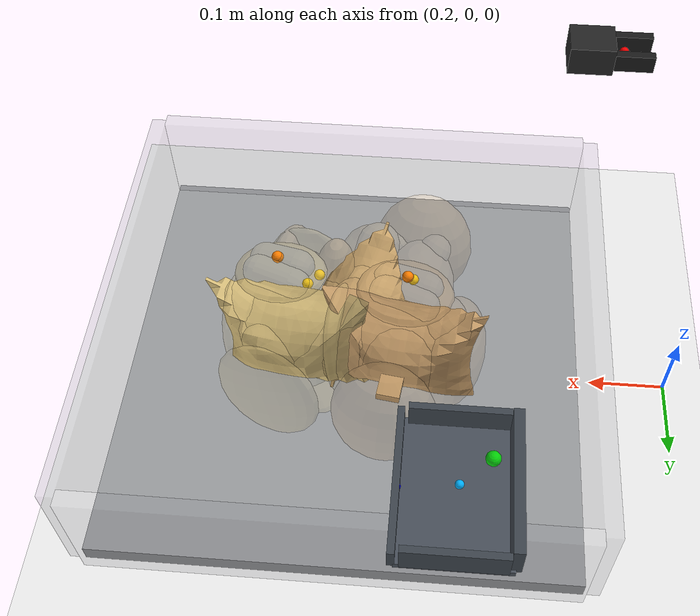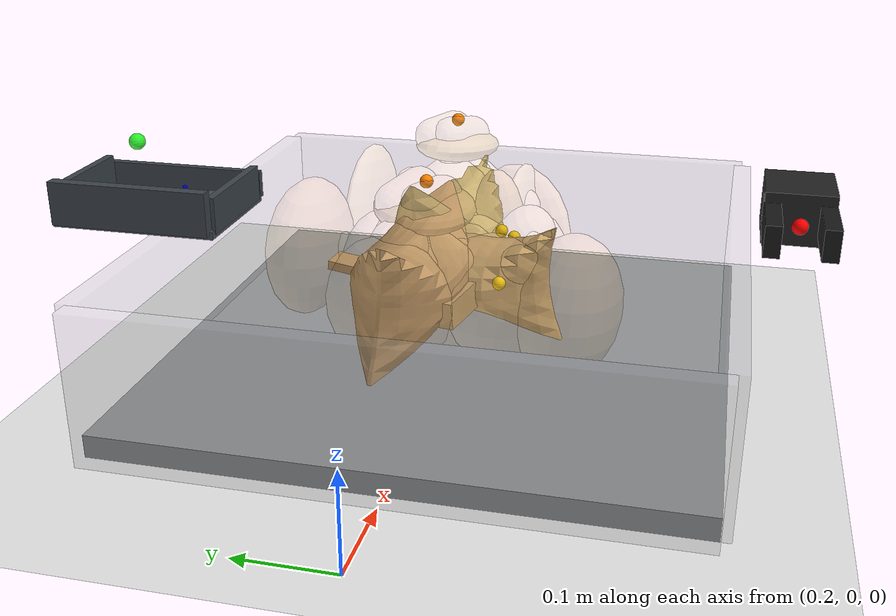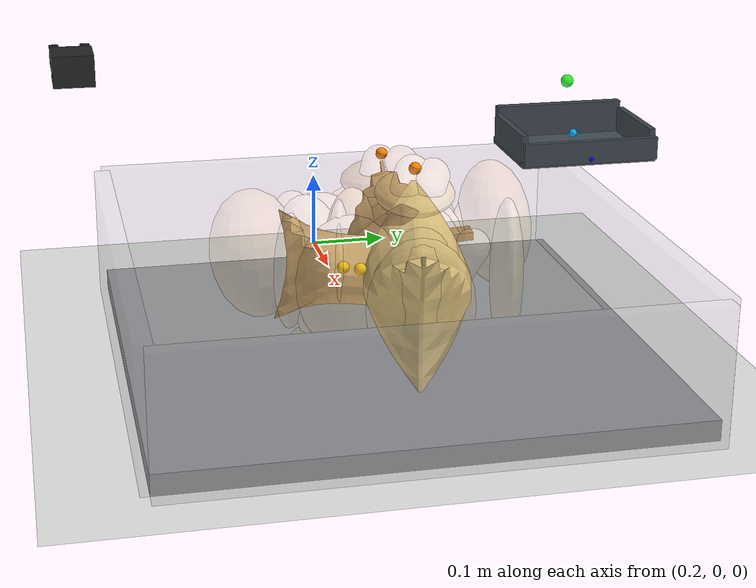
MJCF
<mujoco model="top_fold_occluded_seed10">
  <compiler angle="radian" coordinate="local" inertiafromgeom="true" meshdir="D:/Michael/2025/01.Research/01.Parceldetection/16.Pybullet/bullet3-master (1)/bullet3-master/examples/pybullet/examples/DeformableTest/Sackcodex2/object"/>
  <option timestep="0.002" gravity="0 0 -9.81" integrator="implicitfast" iterations="100" tolerance="1e-8"/>
  <size memory="768M" nconmax="12000"/>

  <visual>
    <global azimuth="128" elevation="-20" offwidth="1280" offheight="720"/>
    <headlight ambient="0.34 0.34 0.34" diffuse="0.78 0.78 0.78" specular="0.15 0.15 0.15"/>
    <rgba haze="0.11 0.13 0.18 1"/>
  </visual>

  <default>
    <geom condim="4" friction="1.15 0.03 0.01" margin="0.003" solimp="0.93 0.98 0.003" solref="0.012 1"/>
    <joint damping="1.2" armature="0.002"/>
    <position kp="2500" forcelimited="true" forcerange="-420 420"/>
    <motor ctrllimited="true"/>
  </default>

  <asset>
    <mesh name="sack_0_visual_mesh" file="sack10.obj" scale="0.0687 0.0687 0.0685"/>
    <mesh name="sack_1_visual_mesh" file="sack7.obj" scale="0.0771 0.0771 0.0850"/>
    <mesh name="sack_2_visual_mesh" file="sack9.obj" scale="0.0751 0.0751 0.0799"/>
  </asset>

  <worldbody>
    <light name="key" pos="0.85 0.15 1.8" dir="-0.2 -0.1 -1" directional="true"/>
    <geom name="floor" type="plane" size="2 2 0.1" rgba="0.93 0.93 0.93 1"/>
    <geom name="work_pad" type="box" pos="0.62 0 0.012" size="0.30 0.30 0.012" rgba="0.60 0.61 0.62 1" friction="1.4 0.05 0.01"/>
    <geom name="corral_front" type="box" pos="0.93 0.00 0.08" size="0.010 0.30 0.08" rgba="0.55 0.55 0.58 0.22" friction="1.0 0.03 0.01"/>
    <geom name="corral_back" type="box" pos="0.31 0.00 0.08" size="0.010 0.30 0.08" rgba="0.55 0.55 0.58 0.18" friction="1.0 0.03 0.01"/>
    <geom name="corral_left" type="box" pos="0.62 0.30 0.08" size="0.30 0.010 0.08" rgba="0.55 0.55 0.58 0.14" friction="1.0 0.03 0.01"/>
    <geom name="corral_right" type="box" pos="0.62 -0.30 0.08" size="0.30 0.010 0.08" rgba="0.55 0.55 0.58 0.14" friction="1.0 0.03 0.01"/>
    <camera name="overview" pos="1.22 0.00 0.92" xyaxes="0 1 0 -0.46 0 0.88"/>

    <body name="gripper_mocap" mocap="true" pos="0.36 -0.33 0.30" quat="0.707107 0 -0.707107 0"/>
    <body name="scoop_mocap" mocap="true" pos="0.42 0.28 0.20" quat="1 0 0 0"/>

    <body name="gripper_ctrl_base" pos="0.36 -0.33 0.30">
      <inertial pos="0 0 0" mass="0.001" diaginertia="1e-6 1e-6 1e-6"/>
      <joint name="gripper_ctrl_x" type="slide" axis="1 0 0" limited="true" range="0.20 1.00"/>
      <body name="gripper_ctrl_y_body">
        <inertial pos="0 0 0" mass="0.001" diaginertia="1e-6 1e-6 1e-6"/>
        <joint name="gripper_ctrl_y" type="slide" axis="0 1 0" limited="true" range="-0.60 0.60"/>
        <body name="gripper_ctrl_z_body">
          <inertial pos="0 0 0" mass="0.001" diaginertia="1e-6 1e-6 1e-6"/>
          <joint name="gripper_ctrl_z" type="slide" axis="0 0 1" limited="true" range="0.04 0.70"/>
          <body name="gripper_ctrl_yaw_body">
            <inertial pos="0 0 0" mass="0.001" diaginertia="1e-6 1e-6 1e-6"/>
            <joint name="gripper_ctrl_yaw" type="hinge" axis="0 0 1" limited="true" range="-3.1416 3.1416"/>
            <body name="gripper_ctrl_pitch_body">
              <inertial pos="0 0 0" mass="0.001" diaginertia="1e-6 1e-6 1e-6"/>
              <joint name="gripper_ctrl_pitch" type="hinge" axis="0 1 0" limited="true" range="-3.1416 3.1416"/>
              <body name="gripper_ctrl_roll_body">
                <inertial pos="0 0 0" mass="0.001" diaginertia="1e-6 1e-6 1e-6"/>
                <joint name="gripper_ctrl_roll" type="hinge" axis="1 0 0" limited="true" range="-3.1416 3.1416"/>
              </body>
            </body>
          </body>
        </body>
      </body>
    </body>

    <body name="scoop_ctrl_base" pos="0.42 0.28 0.20">
      <inertial pos="0 0 0" mass="0.001" diaginertia="1e-6 1e-6 1e-6"/>
      <joint name="scoop_ctrl_x" type="slide" axis="1 0 0" limited="true" range="0.20 1.00"/>
      <body name="scoop_ctrl_y_body">
        <inertial pos="0 0 0" mass="0.001" diaginertia="1e-6 1e-6 1e-6"/>
        <joint name="scoop_ctrl_y" type="slide" axis="0 1 0" limited="true" range="-0.60 0.60"/>
        <body name="scoop_ctrl_z_body">
          <inertial pos="0 0 0" mass="0.001" diaginertia="1e-6 1e-6 1e-6"/>
          <joint name="scoop_ctrl_z" type="slide" axis="0 0 1" limited="true" range="0.04 0.70"/>
          <body name="scoop_ctrl_yaw_body">
            <inertial pos="0 0 0" mass="0.001" diaginertia="1e-6 1e-6 1e-6"/>
            <joint name="scoop_ctrl_yaw" type="hinge" axis="0 0 1" limited="true" range="-3.1416 3.1416"/>
            <body name="scoop_ctrl_pitch_body">
              <inertial pos="0 0 0" mass="0.001" diaginertia="1e-6 1e-6 1e-6"/>
              <joint name="scoop_ctrl_pitch" type="hinge" axis="0 1 0" limited="true" range="-3.1416 3.1416"/>
              <body name="scoop_ctrl_roll_body">
                <inertial pos="0 0 0" mass="0.001" diaginertia="1e-6 1e-6 1e-6"/>
                <joint name="scoop_ctrl_roll" type="hinge" axis="1 0 0" limited="true" range="-3.1416 3.1416"/>
              </body>
            </body>
          </body>
        </body>
      </body>
    </body>

    <body name="gripper_tool" pos="0.36 -0.33 0.30" quat="0.707107 0 -0.707107 0">
      <freejoint name="gripper_tool_free"/>
      <inertial pos="0 0 0.04" mass="0.08" diaginertia="0.0002 0.0002 0.0002"/>
      <geom name="gripper_palm" type="box" pos="0 0 0.030" size="0.020 0.026 0.030" rgba="0.14 0.14 0.14 1"/>
      <body name="left_finger_body" pos="0 0 0.072">
        <joint name="left_finger_slide" type="slide" axis="0 1 0" limited="true" range="0.010 0.040" damping="12"/>
        <geom name="left_finger_geom" type="box" pos="0 0.020 0" size="0.012 0.006 0.040" rgba="0.10 0.10 0.10 1" friction="2.2 0.05 0.01"/>
      </body>
      <body name="right_finger_body" pos="0 0 0.072">
        <joint name="right_finger_slide" type="slide" axis="0 -1 0" limited="true" range="0.010 0.040" damping="12"/>
        <geom name="right_finger_geom" type="box" pos="0 -0.020 0" size="0.012 0.006 0.040" rgba="0.10 0.10 0.10 1" friction="2.2 0.05 0.01"/>
      </body>
      <site name="gripper_pinch_site" pos="0 0 0.074" size="0.006" rgba="1 0 0 1"/>
    </body>

    <body name="scoop_tool" pos="0.42 0.28 0.20" quat="1 0 0 0">
      <freejoint name="scoop_tool_free"/>
      <inertial pos="0 0 0.02" mass="0.10" diaginertia="0.0003 0.0003 0.0003"/>
      <geom name="scoop_plate" type="box" pos="0.062 0 0" size="0.062 0.085 0.004" rgba="0.28 0.31 0.35 1" friction="1.7 0.05 0.01"/>
      <geom name="scoop_lip" type="box" pos="0.126 0 0.014" size="0.004 0.085 0.014" rgba="0.24 0.27 0.30 1" friction="1.7 0.05 0.01"/>
      <geom name="scoop_left_rail" type="box" pos="0.062 0.082 0.018" size="0.056 0.004 0.018" rgba="0.24 0.27 0.30 1"/>
      <geom name="scoop_right_rail" type="box" pos="0.062 -0.082 0.018" size="0.056 0.004 0.018" rgba="0.24 0.27 0.30 1"/>
      <geom name="scoop_backstop" type="box" pos="0.000 0 0.022" size="0.006 0.082 0.022" rgba="0.24 0.27 0.30 1"/>
      <site name="scoop_tip_site" pos="0.126 0 0.005" size="0.005" rgba="0 0 1 1"/>
      <site name="scoop_center_site" pos="0.060 0 0.020" size="0.005" rgba="0 0.7 1 1"/>
      <site name="score_overlay_site" pos="0.030 0 0.080" size="0.008" rgba="0 1 0 0.8"/>
    </body>

    <body name="sack_0" pos="0.6150 -0.0272 0.1082" euler="-0.0689 -0.0793 -1.8466">
      <freejoint name="sack_0_free"/>

      <geom name="sack_0_visual" type="mesh" mesh="sack_0_visual_mesh" rgba="0.820 0.670 0.440 0.92" contype="0" conaffinity="0"/>
      <site name="sack_0_center_site" pos="0 0 0.000" size="0.006" rgba="0 1 0 1"/>
      <site name="sack_0_top_site" pos="0.0049 0.0057 -0.0005" size="0.007" rgba="1 0.5 0 1"/>
      <site name="sack_0_side_site" pos="0.0122 0.0613 0.018" size="0.007" rgba="1 0.8 0 1"/>

      <geom name="sack_0_core_geom" type="ellipsoid" pos="0 0 0.0054" size="0.0443 0.0348 0.0616" mass="0.6942" rgba="0.820 0.670 0.440 0.12" friction="1.0 0.03 0.01"/>
      <geom name="sack_0_core_front" type="capsule" fromto="-0.0118 0 -0.0180 0.0622 0 0.0580" size="0.0276" mass="0.1653" rgba="0.820 0.670 0.440 0.10"/>
      <geom name="sack_0_core_left" type="capsule" fromto="-0.016 0.0408 -0.012 0.020 0.0702 0.054" size="0.0203" mass="0.2975" rgba="0.820 0.670 0.440 0.10"/>
      <geom name="sack_0_core_right" type="capsule" fromto="-0.016 -0.0408 -0.012 0.020 -0.0702 0.054" size="0.0182" mass="0.2975" rgba="0.820 0.670 0.440 0.10"/>

      <!-- 자루의 외형은 둥근 shell lobe로 보이게 하고, contact proxy는 반투명하게 숨긴다. -->
      <geom name="sack_0_shell_main_visual" type="ellipsoid" pos="0.0061 -0.0006 -0.0318" size="0.0674 0.0538 0.0866" rgba="0.820 0.670 0.440 0.16" contype="0" conaffinity="0"/>
      <geom name="sack_0_shell_left_visual" type="ellipsoid" pos="0.0040 0.0390 0.0020" size="0.0458 0.0299 0.0710" rgba="0.820 0.670 0.440 0.14" contype="0" conaffinity="0"/>
      <geom name="sack_0_shell_right_visual" type="ellipsoid" pos="0.0040 -0.0240 0.0000" size="0.0431 0.0203 0.0693" rgba="0.820 0.670 0.440 0.12" contype="0" conaffinity="0"/>
      <geom name="sack_0_top_left_crown_visual" type="capsule" fromto="-0.0210 0.0121 -0.0430 0.0210 0.0061 -0.0390" size="0.0204" rgba="0.820 0.670 0.440 0.14" contype="0" conaffinity="0"/>
      <geom name="sack_0_top_right_crown_visual" type="capsule" fromto="-0.0210 -0.0061 -0.0390 0.0210 -0.0121 -0.0430" size="0.0204" rgba="0.820 0.670 0.440 0.14" contype="0" conaffinity="0"/>

      <body name="sack_0_bottom_support_proxy_body" pos="0.0022 0.0057 -0.0855">
        <joint name="sack_0_bottom_x" type="slide" axis="1 0 0" limited="true" range="-0.012 0.012" damping="18" stiffness="417.7"/>
        <joint name="sack_0_bottom_y" type="slide" axis="0 1 0" limited="true" range="-0.012 0.012" damping="18" stiffness="417.7"/>
        <joint name="sack_0_bottom_z" type="slide" axis="0 0 1" limited="true" range="-0.008 0.020" damping="24" stiffness="514.9"/>
        <geom name="sack_0_bottom_support_proxy" type="ellipsoid" size="0.0686 0.0537 0.0154" mass="0.1322" rgba="0.820 0.670 0.440 0.10" friction="1.55 0.05 0.01"/>
        <geom name="sack_0_bottom_deform_visual" type="ellipsoid" size="0.0731 0.0597 0.0200" rgba="0.820 0.670 0.440 0.22" contype="0" conaffinity="0"/>
      </body>

      <body name="sack_0_top_grasp_proxy_body" pos="0.0122 0.0056 -0.0285">
        <joint name="sack_0_top_x" type="slide" axis="1 0 0" limited="true" range="-0.018 0.018" damping="12" stiffness="160.2"/>
        <joint name="sack_0_top_y" type="slide" axis="0 1 0" limited="true" range="-0.018 0.018" damping="12" stiffness="160.2"/>
        <joint name="sack_0_top_z" type="slide" axis="0 0 1" limited="true" range="-0.040 0.010" damping="14" stiffness="115.9"/>
        <geom name="sack_0_top_grasp_proxy" type="ellipsoid" size="0.0526 0.0337 0.0337" mass="0.0992" rgba="0.820 0.670 0.440 0.10" friction="2.2 0.05 0.01"/>
        <geom name="sack_0_top_deform_visual" type="ellipsoid" size="0.0547 0.0364 0.0425" rgba="0.820 0.670 0.440 0.36" contype="0" conaffinity="0"/>
        <geom name="sack_0_top_fold_left_visual" type="capsule" fromto="-0.0252 0.0094 0.000 0.0053 0.0027 0.0245" size="0.0147" rgba="0.820 0.670 0.440 0.26" contype="0" conaffinity="0"/>
        <geom name="sack_0_top_fold_right_visual" type="capsule" fromto="-0.0063 -0.0027 0.0245 0.0252 -0.0094 0.000" size="0.0147" rgba="0.820 0.670 0.440 0.26" contype="0" conaffinity="0"/>
      </body>

      <body name="sack_0_left_side_proxy_body" pos="0.0020 0.1027 0.010">
        <joint name="sack_0_left_side_slide" type="slide" axis="0 -1 0" limited="true" range="-0.028 0.016" damping="16" stiffness="199.7"/>
        <geom name="sack_0_left_side_proxy" type="ellipsoid" size="0.0586 0.0233 0.0775" mass="0.0992" rgba="0.820 0.670 0.440 0.08" friction="1.25 0.04 0.01"/>
        <geom name="sack_0_left_side_deform_visual" type="ellipsoid" size="0.0603 0.0252 0.0790" rgba="0.820 0.670 0.440 0.24" contype="0" conaffinity="0"/>
      </body>

      <body name="sack_0_right_side_proxy_body" pos="0.0020 -0.0877 0.010">
        <joint name="sack_0_right_side_slide" type="slide" axis="0 1 0" limited="true" range="-0.028 0.016" damping="16" stiffness="185.4"/>
        <geom name="sack_0_right_side_proxy" type="ellipsoid" size="0.0562 0.0182 0.0759" mass="0.0992" rgba="0.820 0.670 0.440 0.08" friction="1.25 0.04 0.01"/>
        <geom name="sack_0_right_side_deform_visual" type="ellipsoid" size="0.0580 0.0201 0.0775" rgba="0.820 0.670 0.440 0.24" contype="0" conaffinity="0"/>
      </body>

      <body name="sack_0_front_proxy_body" pos="0.0748 -0.0002 0.000">
        <joint name="sack_0_front_slide" type="slide" axis="-1 0 0" limited="true" range="-0.022 0.012" damping="15" stiffness="198.8"/>
        <geom name="sack_0_front_support_proxy" type="ellipsoid" size="0.0216 0.0517 0.0735" mass="0.0826" rgba="0.820 0.670 0.440 0.08" friction="1.20 0.04 0.01"/>
        <geom name="sack_0_front_deform_visual" type="ellipsoid" size="0.0220 0.0528 0.0749" rgba="0.820 0.670 0.440 0.20" contype="0" conaffinity="0"/>
      </body>

      <body name="sack_0_back_proxy_body" pos="-0.0577 -0.0002 0.000">
        <joint name="sack_0_back_slide" type="slide" axis="1 0 0" limited="true" range="-0.022 0.012" damping="15" stiffness="184.5"/>
        <geom name="sack_0_back_support_proxy" type="ellipsoid" size="0.0198 0.0517 0.0735" mass="0.0826" rgba="0.820 0.670 0.440 0.08" friction="1.20 0.04 0.01"/>
        <geom name="sack_0_back_deform_visual" type="ellipsoid" size="0.0207 0.0528 0.0749" rgba="0.820 0.670 0.440 0.20" contype="0" conaffinity="0"/>
      </body>

      <body name="sack_0_shape_proxy_body" pos="0.0073 0.0388 0.0476">
        <joint name="sack_0_bulge_y" type="slide" axis="0 1 0" limited="true" range="-0.020 0.020" damping="8" stiffness="128.2"/>
        <joint name="sack_0_bulge_z" type="slide" axis="0 0 1" limited="true" range="-0.014 0.028" damping="8" stiffness="121.2"/>
        <geom name="sack_0_shape_proxy" type="ellipsoid" size="0.0243 0.0206 0.0497" mass="0.0661" rgba="0.820 0.670 0.440 0.10"/>
        <geom name="sack_0_shape_deform_visual" type="ellipsoid" size="0.0284 0.0247 0.0585" rgba="0.820 0.670 0.440 0.32" contype="0" conaffinity="0"/>
      </body>
    </body>

    <body name="sack_1" pos="0.6908 0.0268 0.1158" euler="0.0131 0.0979 -0.1887">
      <freejoint name="sack_1_free"/>

      <geom name="sack_1_visual" type="mesh" mesh="sack_1_visual_mesh" rgba="0.840 0.740 0.480 0.92" contype="0" conaffinity="0"/>
      <site name="sack_1_center_site" pos="0 0 0.000" size="0.006" rgba="0 1 0 1"/>
      <site name="sack_1_top_site" pos="0.0009 -0.0059 0.1390" size="0.007" rgba="1 0.5 0 1"/>
      <site name="sack_1_side_site" pos="0.0022 -0.0645 0.018" size="0.007" rgba="1 0.8 0 1"/>

      <geom name="sack_1_core_geom" type="ellipsoid" pos="0 0 0.0060" size="0.0521 0.0444 0.0905" mass="1.1129" rgba="0.840 0.740 0.480 0.12" friction="1.0 0.03 0.01"/>
      <geom name="sack_1_core_front" type="capsule" fromto="-0.0218 0 -0.0180 0.0522 0 0.0580" size="0.0311" mass="0.2650" rgba="0.840 0.740 0.480 0.10"/>
      <geom name="sack_1_core_left" type="capsule" fromto="-0.016 0.0356 -0.012 0.020 0.0582 0.054" size="0.0201" mass="0.4770" rgba="0.840 0.740 0.480 0.10"/>
      <geom name="sack_1_core_right" type="capsule" fromto="-0.016 -0.0356 -0.012 0.020 -0.0582 0.054" size="0.0181" mass="0.4770" rgba="0.840 0.740 0.480 0.10"/>

      <!-- 자루의 외형은 둥근 shell lobe로 보이게 하고, contact proxy는 반투명하게 숨긴다. -->
      <geom name="sack_1_shell_main_visual" type="ellipsoid" pos="0.0011 0.0001 0.0004" size="0.0691 0.0596 0.0952" rgba="0.840 0.740 0.480 0.16" contype="0" conaffinity="0"/>
      <geom name="sack_1_shell_left_visual" type="ellipsoid" pos="0.0040 0.0284 0.0020" size="0.0470 0.0216 0.0781" rgba="0.840 0.740 0.480 0.14" contype="0" conaffinity="0"/>
      <geom name="sack_1_shell_right_visual" type="ellipsoid" pos="0.0040 -0.0174 0.0000" size="0.0442 0.0166 0.0762" rgba="0.840 0.740 0.480 0.12" contype="0" conaffinity="0"/>
      <geom name="sack_1_top_left_crown_visual" type="capsule" fromto="-0.0220 0.0149 0.1217 0.0220 0.0075 0.1257" size="0.0196" rgba="0.840 0.740 0.480 0.14" contype="0" conaffinity="0"/>
      <geom name="sack_1_top_right_crown_visual" type="capsule" fromto="-0.0220 -0.0075 0.1257 0.0220 -0.0149 0.1217" size="0.0196" rgba="0.840 0.740 0.480 0.14" contype="0" conaffinity="0"/>

      <body name="sack_1_bottom_support_proxy_body" pos="0.0004 -0.0013 -0.0964">
        <joint name="sack_1_bottom_x" type="slide" axis="1 0 0" limited="true" range="-0.012 0.012" damping="18" stiffness="523.2"/>
        <joint name="sack_1_bottom_y" type="slide" axis="0 1 0" limited="true" range="-0.012 0.012" damping="18" stiffness="523.2"/>
        <joint name="sack_1_bottom_z" type="slide" axis="0 0 1" limited="true" range="-0.008 0.020" damping="24" stiffness="643.9"/>
        <geom name="sack_1_bottom_support_proxy" type="ellipsoid" size="0.0709 0.0614 0.0119" mass="0.2120" rgba="0.840 0.740 0.480 0.10" friction="1.55 0.05 0.01"/>
        <geom name="sack_1_bottom_deform_visual" type="ellipsoid" size="0.0755 0.0674 0.0155" rgba="0.840 0.740 0.480 0.22" contype="0" conaffinity="0"/>
      </body>

      <body name="sack_1_top_grasp_proxy_body" pos="0.0022 -0.0059 0.1110">
        <joint name="sack_1_top_x" type="slide" axis="1 0 0" limited="true" range="-0.018 0.018" damping="12" stiffness="201.2"/>
        <joint name="sack_1_top_y" type="slide" axis="0 1 0" limited="true" range="-0.018 0.018" damping="12" stiffness="201.2"/>
        <joint name="sack_1_top_z" type="slide" axis="0 0 1" limited="true" range="-0.040 0.010" damping="14" stiffness="151.1"/>
        <geom name="sack_1_top_grasp_proxy" type="ellipsoid" size="0.0551 0.0414 0.0130" mass="0.1590" rgba="0.840 0.740 0.480 0.10" friction="2.2 0.05 0.01"/>
        <geom name="sack_1_top_deform_visual" type="ellipsoid" size="0.0573 0.0447 0.0172" rgba="0.840 0.740 0.480 0.36" contype="0" conaffinity="0"/>
        <geom name="sack_1_top_fold_left_visual" type="capsule" fromto="-0.0264 0.0116 0.000 0.0055 0.0033 0.0107" size="0.0141" rgba="0.840 0.740 0.480 0.26" contype="0" conaffinity="0"/>
        <geom name="sack_1_top_fold_right_visual" type="capsule" fromto="-0.0066 -0.0033 0.0107 0.0264 -0.0116 0.000" size="0.0141" rgba="0.840 0.740 0.480 0.26" contype="0" conaffinity="0"/>
      </body>

      <body name="sack_1_left_side_proxy_body" pos="0.0004 0.0998 0.010">
        <joint name="sack_1_left_side_slide" type="slide" axis="0 -1 0" limited="true" range="-0.028 0.016" damping="16" stiffness="272.0"/>
        <geom name="sack_1_left_side_proxy" type="ellipsoid" size="0.0611 0.0166 0.0884" mass="0.1590" rgba="0.840 0.740 0.480 0.08" friction="1.25 0.04 0.01"/>
        <geom name="sack_1_left_side_deform_visual" type="ellipsoid" size="0.0629 0.0179 0.0902" rgba="0.840 0.740 0.480 0.24" contype="0" conaffinity="0"/>
      </body>

      <body name="sack_1_right_side_proxy_body" pos="0.0004 -0.0888 0.010">
        <joint name="sack_1_right_side_slide" type="slide" axis="0 1 0" limited="true" range="-0.028 0.016" damping="16" stiffness="251.8"/>
        <geom name="sack_1_right_side_proxy" type="ellipsoid" size="0.0586 0.0129 0.0866" mass="0.1590" rgba="0.840 0.740 0.480 0.08" friction="1.25 0.04 0.01"/>
        <geom name="sack_1_right_side_deform_visual" type="ellipsoid" size="0.0605 0.0143 0.0884" rgba="0.840 0.740 0.480 0.24" contype="0" conaffinity="0"/>
      </body>

      <body name="sack_1_front_proxy_body" pos="0.0673 0.0000 0.000">
        <joint name="sack_1_front_slide" type="slide" axis="-1 0 0" limited="true" range="-0.022 0.012" damping="15" stiffness="251.6"/>
        <geom name="sack_1_front_support_proxy" type="ellipsoid" size="0.0171 0.0594 0.0844" mass="0.1325" rgba="0.840 0.740 0.480 0.08" friction="1.20 0.04 0.01"/>
        <geom name="sack_1_front_deform_visual" type="ellipsoid" size="0.0174 0.0606 0.0861" rgba="0.840 0.740 0.480 0.20" contype="0" conaffinity="0"/>
      </body>

      <body name="sack_1_back_proxy_body" pos="-0.0642 0.0000 0.000">
        <joint name="sack_1_back_slide" type="slide" axis="1 0 0" limited="true" range="-0.022 0.012" damping="15" stiffness="231.4"/>
        <geom name="sack_1_back_support_proxy" type="ellipsoid" size="0.0157 0.0594 0.0844" mass="0.1325" rgba="0.840 0.740 0.480 0.08" friction="1.20 0.04 0.01"/>
        <geom name="sack_1_back_deform_visual" type="ellipsoid" size="0.0164 0.0606 0.0861" rgba="0.840 0.740 0.480 0.20" contype="0" conaffinity="0"/>
      </body>

      <body name="sack_1_shape_proxy_body" pos="0.0013 -0.0241 0.0171">
        <joint name="sack_1_bulge_y" type="slide" axis="0 1 0" limited="true" range="-0.020 0.020" damping="8" stiffness="60.0"/>
        <joint name="sack_1_bulge_z" type="slide" axis="0 0 1" limited="true" range="-0.014 0.028" damping="8" stiffness="70.0"/>
        <geom name="sack_1_shape_proxy" type="ellipsoid" size="0.0241 0.0202 0.0290" mass="0.1060" rgba="0.840 0.740 0.480 0.10"/>
        <geom name="sack_1_shape_deform_visual" type="ellipsoid" size="0.0282 0.0243 0.0332" rgba="0.840 0.740 0.480 0.32" contype="0" conaffinity="0"/>
      </body>
    </body>

    <body name="sack_2" pos="0.5562 0.0344 0.1177" euler="0.0979 -0.0501 3.0281">
      <freejoint name="sack_2_free"/>

      <geom name="sack_2_visual" type="mesh" mesh="sack_2_visual_mesh" rgba="0.760 0.600 0.400 0.92" contype="0" conaffinity="0"/>
      <site name="sack_2_center_site" pos="0 0 0.000" size="0.006" rgba="0 1 0 1"/>
      <site name="sack_2_top_site" pos="-0.0006 0.0067 0.1122" size="0.007" rgba="1 0.5 0 1"/>
      <site name="sack_2_side_site" pos="-0.0015 0.0943 0.018" size="0.007" rgba="1 0.8 0 1"/>

      <geom name="sack_2_core_geom" type="ellipsoid" pos="0 0 0.0059" size="0.0440 0.0353 0.0764" mass="0.7669" rgba="0.760 0.600 0.400 0.12" friction="1.0 0.03 0.01"/>
      <geom name="sack_2_core_front" type="capsule" fromto="-0.0255 0 -0.0180 0.0485 0 0.0580" size="0.0298" mass="0.1826" rgba="0.760 0.600 0.400 0.10"/>
      <geom name="sack_2_core_left" type="capsule" fromto="-0.016 0.0622 -0.012 0.020 0.1191 0.054" size="0.0209" mass="0.3287" rgba="0.760 0.600 0.400 0.10"/>
      <geom name="sack_2_core_right" type="capsule" fromto="-0.016 -0.0622 -0.012 0.020 -0.1191 0.054" size="0.0187" mass="0.3287" rgba="0.760 0.600 0.400 0.10"/>

      <!-- 자루의 외형은 둥근 shell lobe로 보이게 하고, contact proxy는 반투명하게 숨긴다. -->
      <geom name="sack_2_shell_main_visual" type="ellipsoid" pos="-0.0007 0.0012 -0.0031" size="0.0724 0.0666 0.0861" rgba="0.760 0.600 0.400 0.16" contype="0" conaffinity="0"/>
      <geom name="sack_2_shell_left_visual" type="ellipsoid" pos="0.0040 0.0916 0.0020" size="0.0493 0.0635 0.0706" rgba="0.760 0.600 0.400 0.14" contype="0" conaffinity="0"/>
      <geom name="sack_2_shell_right_visual" type="ellipsoid" pos="0.0040 -0.0417 0.0000" size="0.0464 0.0356 0.0688" rgba="0.760 0.600 0.400 0.12" contype="0" conaffinity="0"/>
      <geom name="sack_2_top_left_crown_visual" type="capsule" fromto="-0.0231 0.0174 0.0923 0.0231 0.0087 0.0963" size="0.0207" rgba="0.760 0.600 0.400 0.14" contype="0" conaffinity="0"/>
      <geom name="sack_2_top_right_crown_visual" type="capsule" fromto="-0.0231 -0.0087 0.0963 0.0231 -0.0174 0.0923" size="0.0207" rgba="0.760 0.600 0.400 0.14" contype="0" conaffinity="0"/>

      <body name="sack_2_bottom_support_proxy_body" pos="-0.0003 0.0033 -0.0845">
        <joint name="sack_2_bottom_x" type="slide" axis="1 0 0" limited="true" range="-0.012 0.012" damping="18" stiffness="483.3"/>
        <joint name="sack_2_bottom_y" type="slide" axis="0 1 0" limited="true" range="-0.012 0.012" damping="18" stiffness="483.3"/>
        <joint name="sack_2_bottom_z" type="slide" axis="0 0 1" limited="true" range="-0.008 0.020" damping="24" stiffness="595.2"/>
        <geom name="sack_2_bottom_support_proxy" type="ellipsoid" size="0.0735 0.0684 0.0132" mass="0.1461" rgba="0.760 0.600 0.400 0.10" friction="1.55 0.05 0.01"/>
        <geom name="sack_2_bottom_deform_visual" type="ellipsoid" size="0.0783 0.0744 0.0172" rgba="0.760 0.600 0.400 0.22" contype="0" conaffinity="0"/>
      </body>

      <body name="sack_2_top_grasp_proxy_body" pos="-0.0015 0.0069 0.0842">
        <joint name="sack_2_top_x" type="slide" axis="1 0 0" limited="true" range="-0.018 0.018" damping="12" stiffness="185.7"/>
        <joint name="sack_2_top_y" type="slide" axis="0 1 0" limited="true" range="-0.018 0.018" damping="12" stiffness="185.7"/>
        <joint name="sack_2_top_z" type="slide" axis="0 0 1" limited="true" range="-0.040 0.010" damping="14" stiffness="137.8"/>
        <geom name="sack_2_top_grasp_proxy" type="ellipsoid" size="0.0578 0.0484 0.0152" mass="0.1096" rgba="0.760 0.600 0.400 0.10" friction="2.2 0.05 0.01"/>
        <geom name="sack_2_top_deform_visual" type="ellipsoid" size="0.0602 0.0523 0.0200" rgba="0.760 0.600 0.400 0.36" contype="0" conaffinity="0"/>
        <geom name="sack_2_top_fold_left_visual" type="capsule" fromto="-0.0278 0.0136 0.000 0.0058 0.0039 0.0122" size="0.0149" rgba="0.760 0.600 0.400 0.26" contype="0" conaffinity="0"/>
        <geom name="sack_2_top_fold_right_visual" type="capsule" fromto="-0.0069 -0.0039 0.0122 0.0278 -0.0136 0.000" size="0.0149" rgba="0.760 0.600 0.400 0.26" contype="0" conaffinity="0"/>
      </body>

      <body name="sack_2_left_side_proxy_body" pos="-0.0002 0.1700 0.010">
        <joint name="sack_2_left_side_slide" type="slide" axis="0 -1 0" limited="true" range="-0.028 0.016" damping="16" stiffness="245.1"/>
        <geom name="sack_2_left_side_proxy" type="ellipsoid" size="0.0638 0.0509 0.0765" mass="0.1096" rgba="0.760 0.600 0.400 0.08" friction="1.25 0.04 0.01"/>
        <geom name="sack_2_left_side_deform_visual" type="ellipsoid" size="0.0658 0.0549 0.0781" rgba="0.760 0.600 0.400 0.24" contype="0" conaffinity="0"/>
      </body>

      <body name="sack_2_right_side_proxy_body" pos="-0.0002 -0.1202 0.010">
        <joint name="sack_2_right_side_slide" type="slide" axis="0 1 0" limited="true" range="-0.028 0.016" damping="16" stiffness="227.1"/>
        <geom name="sack_2_right_side_proxy" type="ellipsoid" size="0.0613 0.0397 0.0750" mass="0.1096" rgba="0.760 0.600 0.400 0.08" friction="1.25 0.04 0.01"/>
        <geom name="sack_2_right_side_deform_visual" type="ellipsoid" size="0.0632 0.0437 0.0765" rgba="0.760 0.600 0.400 0.24" contype="0" conaffinity="0"/>
      </body>

      <body name="sack_2_front_proxy_body" pos="0.0664 0.0004 0.000">
        <joint name="sack_2_front_slide" type="slide" axis="-1 0 0" limited="true" range="-0.022 0.012" damping="15" stiffness="231.7"/>
        <geom name="sack_2_front_support_proxy" type="ellipsoid" size="0.0399 0.0664 0.0725" mass="0.0913" rgba="0.760 0.600 0.400 0.08" friction="1.20 0.04 0.01"/>
        <geom name="sack_2_front_deform_visual" type="ellipsoid" size="0.0407 0.0678 0.0740" rgba="0.760 0.600 0.400 0.20" contype="0" conaffinity="0"/>
      </body>

      <body name="sack_2_back_proxy_body" pos="-0.0684 0.0004 0.000">
        <joint name="sack_2_back_slide" type="slide" axis="1 0 0" limited="true" range="-0.022 0.012" damping="15" stiffness="213.7"/>
        <geom name="sack_2_back_support_proxy" type="ellipsoid" size="0.0367 0.0664 0.0725" mass="0.0913" rgba="0.760 0.600 0.400 0.08" friction="1.20 0.04 0.01"/>
        <geom name="sack_2_back_deform_visual" type="ellipsoid" size="0.0383 0.0678 0.0740" rgba="0.760 0.600 0.400 0.20" contype="0" conaffinity="0"/>
      </body>

      <body name="sack_2_shape_proxy_body" pos="-0.0009 0.1014 0.0286">
        <joint name="sack_2_bulge_y" type="slide" axis="0 1 0" limited="true" range="-0.020 0.020" damping="8" stiffness="84.4"/>
        <joint name="sack_2_bulge_z" type="slide" axis="0 0 1" limited="true" range="-0.014 0.028" damping="8" stiffness="88.3"/>
        <geom name="sack_2_shape_proxy" type="ellipsoid" size="0.0250 0.0221 0.0312" mass="0.0730" rgba="0.760 0.600 0.400 0.10"/>
        <geom name="sack_2_shape_deform_visual" type="ellipsoid" size="0.0293 0.0264 0.0360" rgba="0.760 0.600 0.400 0.32" contype="0" conaffinity="0"/>
      </body>
    </body>
  </worldbody>

  <equality>
    <weld name="gripper_follow" body1="gripper_mocap" body2="gripper_tool" torquescale="400" solref="0.002 1" solimp="0.99 0.999 0.0001"/>
    <weld name="scoop_follow" body1="scoop_mocap" body2="scoop_tool" torquescale="500" solref="0.002 1" solimp="0.99 0.999 0.0001"/>
  </equality>

  <actuator>
    <position name="gripper_ctrl_x_act" joint="gripper_ctrl_x" ctrlrange="0.20 1.00" kp="3500" forcerange="-300 300"/>
    <position name="gripper_ctrl_y_act" joint="gripper_ctrl_y" ctrlrange="-0.60 0.60" kp="3500" forcerange="-300 300"/>
    <position name="gripper_ctrl_z_act" joint="gripper_ctrl_z" ctrlrange="0.04 0.70" kp="3500" forcerange="-300 300"/>
    <position name="gripper_ctrl_yaw_act" joint="gripper_ctrl_yaw" ctrlrange="-3.1416 3.1416" kp="1800" forcerange="-250 250"/>
    <position name="gripper_ctrl_pitch_act" joint="gripper_ctrl_pitch" ctrlrange="-3.1416 3.1416" kp="1800" forcerange="-250 250"/>
    <position name="gripper_ctrl_roll_act" joint="gripper_ctrl_roll" ctrlrange="-3.1416 3.1416" kp="1800" forcerange="-250 250"/>
    <position name="scoop_ctrl_x_act" joint="scoop_ctrl_x" ctrlrange="0.20 1.00" kp="3500" forcerange="-300 300"/>
    <position name="scoop_ctrl_y_act" joint="scoop_ctrl_y" ctrlrange="-0.60 0.60" kp="3500" forcerange="-300 300"/>
    <position name="scoop_ctrl_z_act" joint="scoop_ctrl_z" ctrlrange="0.04 0.70" kp="3500" forcerange="-300 300"/>
    <position name="scoop_ctrl_yaw_act" joint="scoop_ctrl_yaw" ctrlrange="-3.1416 3.1416" kp="1800" forcerange="-250 250"/>
    <position name="scoop_ctrl_pitch_act" joint="scoop_ctrl_pitch" ctrlrange="-3.1416 3.1416" kp="1800" forcerange="-250 250"/>
    <position name="scoop_ctrl_roll_act" joint="scoop_ctrl_roll" ctrlrange="-3.1416 3.1416" kp="1800" forcerange="-250 250"/>
    <position name="left_finger_act" joint="left_finger_slide" ctrlrange="0.010 0.040" kp="2800" forcerange="-220 220"/>
    <position name="right_finger_act" joint="right_finger_slide" ctrlrange="0.010 0.040" kp="2800" forcerange="-220 220"/>
  </actuator>

  <contact>
    <exclude body1="sack_0_top_grasp_proxy_body" body2="sack_0_left_side_proxy_body"/>
    <exclude body1="sack_0_top_grasp_proxy_body" body2="sack_0_right_side_proxy_body"/>
    <exclude body1="sack_1_top_grasp_proxy_body" body2="sack_1_left_side_proxy_body"/>
    <exclude body1="sack_1_top_grasp_proxy_body" body2="sack_1_right_side_proxy_body"/>
    <exclude body1="sack_2_top_grasp_proxy_body" body2="sack_2_left_side_proxy_body"/>
    <exclude body1="sack_2_top_grasp_proxy_body" body2="sack_2_right_side_proxy_body"/>
  </contact>
</mujoco>
